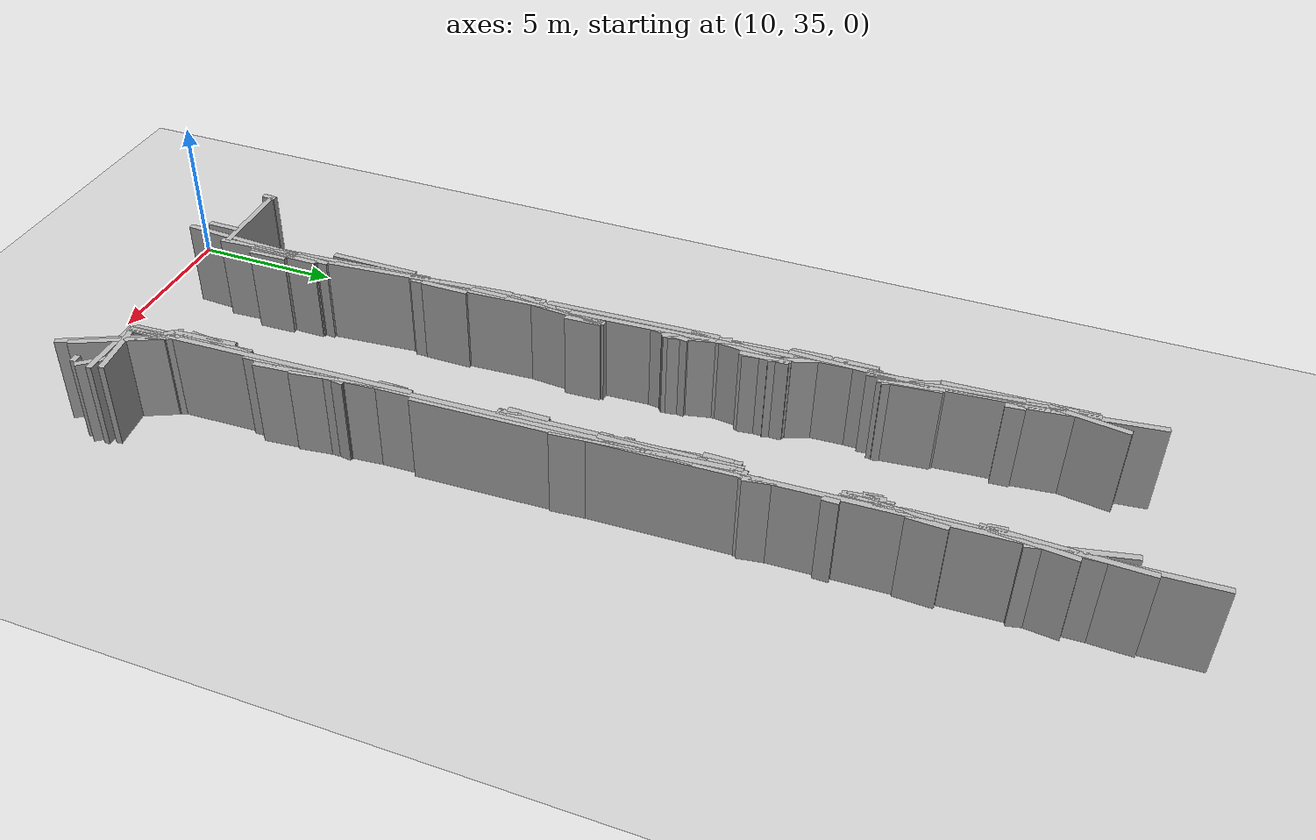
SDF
<sdf version="1.6">
 <world name="aboureyhan">
  <model name="ground_plane">
   <static>true</static>
   <link name="link">
    <collision name="collision">
     <geometry><plane><normal>0 0 1</normal><size>100 100</size></plane></geometry>
    </collision>
    <visual name="visual">
     <geometry><plane><normal>0 0 1</normal><size>500 500</size></plane></geometry>
     <material>
      <ambient>0.8 0.8 0.8 1</ambient>
      <diffuse>0.8 0.8 0.8 1</diffuse>
      <specular>0.8 0.8 0.8 1</specular>
     </material>
    </visual>
   </link>
  </model>
  <model name="wall_0">
   <static>true</static>
   <pose>17.950000000000003 52.25 1.5 0 0 -1.536027734938814</pose>
   <link name="link">
    <collision name="collision">
     <geometry><box><size>11.506954418958998 0.2 3.0</size></box></geometry>
    </collision>
    <visual name="visual">
     <geometry><box><size>11.506954418958998 0.2 3.0</size></box></geometry>
     <material><ambient>0.5 0.5 0.5 1</ambient><diffuse>0.7 0.7 0.7 1</diffuse></material>
    </visual>
   </link>
  </model>
  <model name="wall_1">
   <static>true</static>
   <pose>17.85 59.275 1.5 0 0 -1.5359520476033424</pose>
   <link name="link">
    <collision name="collision">
     <geometry><box><size>22.963939122023472 0.2 3.0</size></box></geometry>
    </collision>
    <visual name="visual">
     <geometry><box><size>22.963939122023472 0.2 3.0</size></box></geometry>
     <material><ambient>0.5 0.5 0.5 1</ambient><diffuse>0.7 0.7 0.7 1</diffuse></material>
    </visual>
   </link>
  </model>
  <model name="wall_9">
   <static>true</static>
   <pose>12.350000000000001 52.75 1.5 0 0 -1.518894928336724</pose>
   <link name="link">
    <collision name="collision">
     <geometry><box><size>15.420765220960993 0.2 3.0</size></box></geometry>
    </collision>
    <visual name="visual">
     <geometry><box><size>15.420765220960993 0.2 3.0</size></box></geometry>
     <material><ambient>0.5 0.5 0.5 1</ambient><diffuse>0.7 0.7 0.7 1</diffuse></material>
    </visual>
   </link>
  </model>
  <model name="wall_12">
   <static>true</static>
   <pose>11.675 64.45 1.5 0 0 -1.538199181676944</pose>
   <link name="link">
    <collision name="collision"><geometry><box><size>4.602445002387312 0.2 3.0</size></box></geometry></collision>
    <visual name="visual">
     <geometry><box><size>4.602445002387312 0.2 3.0</size></box></geometry>
     <material><ambient>0.5 0.5 0.5 1</ambient><diffuse>0.7 0.7 0.7 1</diffuse></material>
    </visual>
   </link>
  </model>
  <model name="wall_13">
   <static>true</static>
   <pose>13.225000000000001 39.95 1.5 0 0 -1.5323537367737112</pose>
   <link name="link">
    <collision name="collision"><geometry><box><size>1.30096118312578 0.2 3.0</size></box></geometry></collision>
    <visual name="visual">
     <geometry><box><size>1.30096118312578 0.2 3.0</size></box></geometry>
     <material><ambient>0.5 0.5 0.5 1</ambient><diffuse>0.7 0.7 0.7 1</diffuse></material>
    </visual>
   </link>
  </model>
  <model name="wall_19">
   <static>true</static>
   <pose>18.175 42.95 1.5 0 0 -1.5343541341854636</pose>
   <link name="link">
    <collision name="collision"><geometry><box><size>9.606378089581936 0.2 3.0</size></box></geometry></collision>
    <visual name="visual">
     <geometry><box><size>9.606378089581936 0.2 3.0</size></box></geometry>
     <material><ambient>0.5 0.5 0.5 1</ambient><diffuse>0.7 0.7 0.7 1</diffuse></material>
    </visual>
   </link>
  </model>
  <model name="wall_22">
   <static>true</static>
   <pose>17.725 54.150000000000006 1.5 0 0 -1.5370253871899826</pose>
   <link name="link">
    <collision name="collision"><geometry><box><size>7.404221768693864 0.2 3.0</size></box></geometry></collision>
    <visual name="visual">
     <geometry><box><size>7.404221768693864 0.2 3.0</size></box></geometry>
     <material><ambient>0.5 0.5 0.5 1</ambient><diffuse>0.7 0.7 0.7 1</diffuse></material>
    </visual>
   </link>
  </model>
  <model name="wall_26">
   <static>true</static>
   <pose>12.525 56.925000000000004 1.5 0 0 -1.5385494443596421</pose>
   <link name="link">
    <collision name="collision">
     <geometry><box><size>1.5508062419270794 0.2 3.0</size></box></geometry>
    </collision>
    <visual name="visual">
     <geometry><box><size>1.5508062419270794 0.2 3.0</size></box></geometry>
     <material><ambient>0.5 0.5 0.5 1</ambient><diffuse>0.7 0.7 0.7 1</diffuse></material>
    </visual>
   </link>
  </model>
  <model name="wall_30">
   <static>true</static>
   <pose>18.15 40.275 1.5 0 0 -1.5214536945419268</pose>
   <link name="link">
    <collision name="collision"><geometry><box><size>4.054935264588077 0.2 3.0</size></box></geometry></collision>
    <visual name="visual">
     <geometry><box><size>4.054935264588077 0.2 3.0</size></box></geometry>
     <material><ambient>0.5 0.5 0.5 1</ambient><diffuse>0.7 0.7 0.7 1</diffuse></material>
    </visual>
   </link>
  </model>
  <model name="wall_31">
   <static>true</static>
   <pose>12.325000000000001 54.15 1.5 0 0 -1.5222234514887643</pose>
   <link name="link">
    <collision name="collision"><geometry><box><size>7.208501924810732 0.2 3.0</size></box></geometry></collision>
    <visual name="visual">
     <geometry><box><size>7.208501924810732 0.2 3.0</size></box></geometry>
     <material><ambient>0.5 0.5 0.5 1</ambient><diffuse>0.7 0.7 0.7 1</diffuse></material>
    </visual>
   </link>
  </model>
  <model name="wall_37">
   <static>true</static>
   <pose>11.825000000000001 58.22500000000001 1.5 0 0 -1.530817639671606</pose>
   <link name="link">
    <collision name="collision">
     <geometry><box><size>1.2509996003196804 0.2 3.0</size></box></geometry>
    </collision>
    <visual name="visual">
     <geometry><box><size>1.2509996003196804 0.2 3.0</size></box></geometry>
     <material><ambient>0.5 0.5 0.5 1</ambient><diffuse>0.7 0.7 0.7 1</diffuse></material>
    </visual>
   </link>
  </model>
  <model name="wall_38">
   <static>true</static>
   <pose>17.450000000000003 57.050000000000004 1.5 0 0 -1.5707963267948966</pose>
   <link name="link">
    <collision name="collision">
     <geometry><box><size>0.8999999999999915 0.2 3.0</size></box></geometry>
    </collision>
    <visual name="visual">
     <geometry><box><size>0.8999999999999915 0.2 3.0</size></box></geometry>
     <material><ambient>0.5 0.5 0.5 1</ambient><diffuse>0.7 0.7 0.7 1</diffuse></material>
    </visual>
   </link>
  </model>
  <model name="wall_39">
   <static>true</static>
   <pose>12.775 51.1 1.5 0 0 -1.5291537476963077</pose>
   <link name="link">
    <collision name="collision">
     <geometry><box><size>1.2010412149464342 0.2 3.0</size></box></geometry>
    </collision>
    <visual name="visual">
     <geometry><box><size>1.2010412149464342 0.2 3.0</size></box></geometry>
     <material><ambient>0.5 0.5 0.5 1</ambient><diffuse>0.7 0.7 0.7 1</diffuse></material>
    </visual>
   </link>
  </model>
  <model name="wall_65">
   <static>true</static>
   <pose>12.175 52.525000000000006 1.5 0 0 -1.5265773823992437</pose>
   <link name="link">
    <collision name="collision"><geometry><box><size>5.655528268871093 0.2 3.0</size></box></geometry></collision>
    <visual name="visual">
     <geometry><box><size>5.655528268871093 0.2 3.0</size></box></geometry>
     <material><ambient>0.5 0.5 0.5 1</ambient><diffuse>0.7 0.7 0.7 1</diffuse></material>
    </visual>
   </link>
  </model>
  <model name="wall_96">
   <static>true</static>
   <pose>18.200000000000003 45.7 1.5 0 0 -1.4364748848419278</pose>
   <link name="link">
    <collision name="collision">
     <geometry><box><size>3.7336309405188826 0.2 3.0</size></box></geometry>
    </collision>
    <visual name="visual">
     <geometry><box><size>3.7336309405188826 0.2 3.0</size></box></geometry>
     <material><ambient>0.5 0.5 0.5 1</ambient><diffuse>0.7 0.7 0.7 1</diffuse></material>
    </visual>
   </link>
  </model>
  <model name="wall_97">
   <static>true</static>
   <pose>12.75 41.775 1.5 0 0 -1.5046677234303236</pose>
   <link name="link">
    <collision name="collision">
     <geometry><box><size>7.5665381780573835 0.2 3.0</size></box></geometry>
    </collision>
    <visual name="visual">
     <geometry><box><size>7.5665381780573835 0.2 3.0</size></box></geometry>
     <material><ambient>0.5 0.5 0.5 1</ambient><diffuse>0.7 0.7 0.7 1</diffuse></material>
    </visual>
   </link>
  </model>
  <model name="wall_151">
   <static>true</static>
   <pose>18.3 43.925000000000004 1.5 0 0 1.5707963267948966</pose>
   <link name="link">
    <collision name="collision"><geometry><box><size>3.450000000000003 0.2 3.0</size></box></geometry></collision>
    <visual name="visual">
     <geometry><box><size>3.450000000000003 0.2 3.0</size></box></geometry>
     <material><ambient>0.5 0.5 0.5 1</ambient><diffuse>0.7 0.7 0.7 1</diffuse></material>
    </visual>
   </link>
  </model>
  <model name="wall_154">
   <static>true</static>
   <pose>12.300000000000002 55.75 1.5 0 0 1.4559197213779969</pose>
   <link name="link">
    <collision name="collision">
     <geometry><box><size>2.6172504656604745 0.2 3.0</size></box></geometry>
    </collision>
    <visual name="visual">
     <geometry><box><size>2.6172504656604745 0.2 3.0</size></box></geometry>
     <material><ambient>0.5 0.5 0.5 1</ambient><diffuse>0.7 0.7 0.7 1</diffuse></material>
    </visual>
   </link>
  </model>
  <model name="wall_162">
   <static>true</static>
   <pose>12.800000000000002 39.3 1.5 0 0 1.5163048705541653</pose>
   <link name="link">
    <collision name="collision"><geometry><box><size>5.508175741568165 0.2 3.0</size></box></geometry></collision>
    <visual name="visual">
     <geometry><box><size>5.508175741568165 0.2 3.0</size></box></geometry>
     <material><ambient>0.5 0.5 0.5 1</ambient><diffuse>0.7 0.7 0.7 1</diffuse></material>
    </visual>
   </link>
  </model>
  <model name="wall_181">
   <static>true</static>
   <pose>12.450000000000001 53.800000000000004 1.5 0 0 1.4288992721907323</pose>
   <link name="link">
    <collision name="collision">
     <geometry><box><size>1.4142135623730865 0.2 3.0</size></box></geometry>
    </collision>
    <visual name="visual">
     <geometry><box><size>1.4142135623730865 0.2 3.0</size></box></geometry>
     <material><ambient>0.5 0.5 0.5 1</ambient><diffuse>0.7 0.7 0.7 1</diffuse></material>
    </visual>
   </link>
  </model>
  <model name="wall_192">
   <static>true</static>
   <pose>12.200000000000001 61.35000000000001 1.5 0 0 -1.471127674303735</pose>
   <link name="link">
    <collision name="collision"><geometry><box><size>2.009975124224178 0.2 3.0</size></box></geometry></collision>
    <visual name="visual">
     <geometry><box><size>2.009975124224178 0.2 3.0</size></box></geometry>
     <material><ambient>0.5 0.5 0.5 1</ambient><diffuse>0.7 0.7 0.7 1</diffuse></material>
    </visual>
   </link>
  </model>
  <model name="wall_199">
   <static>true</static>
   <pose>17.900000000000002 53.45 1.5 0 0 1.5707963267948966</pose>
   <link name="link">
    <collision name="collision"><geometry><box><size>6.0 0.2 3.0</size></box></geometry></collision>
    <visual name="visual">
     <geometry><box><size>6.0 0.2 3.0</size></box></geometry>
     <material><ambient>0.5 0.5 0.5 1</ambient><diffuse>0.7 0.7 0.7 1</diffuse></material>
    </visual>
   </link>
  </model>
  <model name="wall_224">
   <static>true</static>
   <pose>11.925000000000002 63.575 1.5 0 0 -1.4857307868262515</pose>
   <link name="link">
    <collision name="collision"><geometry><box><size>6.47340713998431 0.2 3.0</size></box></geometry></collision>
    <visual name="visual">
     <geometry><box><size>6.47340713998431 0.2 3.0</size></box></geometry>
     <material><ambient>0.5 0.5 0.5 1</ambient><diffuse>0.7 0.7 0.7 1</diffuse></material>
    </visual>
   </link>
  </model>
  <model name="wall_227">
   <static>true</static>
   <pose>11.875000000000002 66.5 1.5 0 0 1.4259838285559587</pose>
   <link name="link">
    <collision name="collision"><geometry><box><size>2.425386567126986 0.2 3.0</size></box></geometry></collision>
    <visual name="visual">
     <geometry><box><size>2.425386567126986 0.2 3.0</size></box></geometry>
     <material><ambient>0.5 0.5 0.5 1</ambient><diffuse>0.7 0.7 0.7 1</diffuse></material>
    </visual>
   </link>
  </model>
  <model name="wall_233">
   <static>true</static>
   <pose>18.400000000000002 38.825 1.5 0 0 1.5707963267948966</pose>
   <link name="link">
    <collision name="collision">
     <geometry><box><size>1.3499999999999943 0.2 3.0</size></box></geometry>
    </collision>
    <visual name="visual">
     <geometry><box><size>1.3499999999999943 0.2 3.0</size></box></geometry>
     <material><ambient>0.5 0.5 0.5 1</ambient><diffuse>0.7 0.7 0.7 1</diffuse></material>
    </visual>
   </link>
  </model>
  <model name="wall_253">
   <static>true</static>
   <pose>17.650000000000002 54.45 1.5 0 0 1.5707963267948966</pose>
   <link name="link">
    <collision name="collision">
     <geometry><box><size>0.30000000000001137 0.2 3.0</size></box></geometry>
    </collision>
    <visual name="visual">
     <geometry><box><size>0.30000000000001137 0.2 3.0</size></box></geometry>
     <material><ambient>0.5 0.5 0.5 1</ambient><diffuse>0.7 0.7 0.7 1</diffuse></material>
    </visual>
   </link>
  </model>
  <model name="wall_265">
   <static>true</static>
   <pose>19.425 38.150000000000006 1.5 0 0 0.0</pose>
   <link name="link">
    <collision name="collision"><geometry><box><size>2.25 0.2 3.0</size></box></geometry></collision>
    <visual name="visual">
     <geometry><box><size>2.25 0.2 3.0</size></box></geometry>
     <material><ambient>0.5 0.5 0.5 1</ambient><diffuse>0.7 0.7 0.7 1</diffuse></material>
    </visual>
   </link>
  </model>
  <model name="wall_269">
   <static>true</static>
   <pose>17.950000000000003 60.400000000000006 1.5 0 0 1.5707963267948966</pose>
   <link name="link">
    <collision name="collision"><geometry><box><size>0.5 0.2 3.0</size></box></geometry></collision>
    <visual name="visual">
     <geometry><box><size>0.5 0.2 3.0</size></box></geometry>
     <material><ambient>0.5 0.5 0.5 1</ambient><diffuse>0.7 0.7 0.7 1</diffuse></material>
    </visual>
   </link>
  </model>
  <model name="wall_272">
   <static>true</static>
   <pose>12.500000000000002 50.275 1.5 0 0 1.4403930189057623</pose>
   <link name="link">
    <collision name="collision">
     <geometry><box><size>3.0761176830544024 0.2 3.0</size></box></geometry>
    </collision>
    <visual name="visual">
     <geometry><box><size>3.0761176830544024 0.2 3.0</size></box></geometry>
     <material><ambient>0.5 0.5 0.5 1</ambient><diffuse>0.7 0.7 0.7 1</diffuse></material>
    </visual>
   </link>
  </model>
  <model name="wall_282">
   <static>true</static>
   <pose>12.700000000000001 43.85 1.5 0 0 -1.4840579881189115</pose>
   <link name="link">
    <collision name="collision"><geometry><box><size>9.23471710449216 0.2 3.0</size></box></geometry></collision>
    <visual name="visual">
     <geometry><box><size>9.23471710449216 0.2 3.0</size></box></geometry>
     <material><ambient>0.5 0.5 0.5 1</ambient><diffuse>0.7 0.7 0.7 1</diffuse></material>
    </visual>
   </link>
  </model>
  <model name="wall_303">
   <static>true</static>
   <pose>17.650000000000002 61.3 1.5 0 0 -1.504228163019072</pose>
   <link name="link">
    <collision name="collision"><geometry><box><size>1.503329637837291 0.2 3.0</size></box></geometry></collision>
    <visual name="visual">
     <geometry><box><size>1.503329637837291 0.2 3.0</size></box></geometry>
     <material><ambient>0.5 0.5 0.5 1</ambient><diffuse>0.7 0.7 0.7 1</diffuse></material>
    </visual>
   </link>
  </model>
  <model name="wall_310">
   <static>true</static>
   <pose>17.475 61.2 1.5 0 0 -1.446441332248135</pose>
   <link name="link">
    <collision name="collision"><geometry><box><size>1.209338662244771 0.2 3.0</size></box></geometry></collision>
    <visual name="visual">
     <geometry><box><size>1.209338662244771 0.2 3.0</size></box></geometry>
     <material><ambient>0.5 0.5 0.5 1</ambient><diffuse>0.7 0.7 0.7 1</diffuse></material>
    </visual>
   </link>
  </model>
  <model name="wall_322">
   <static>true</static>
   <pose>12.075000000000001 64.4 1.5 0 0 -1.4876550949064535</pose>
   <link name="link">
    <collision name="collision">
     <geometry><box><size>0.6020797289396091 0.2 3.0</size></box></geometry>
    </collision>
    <visual name="visual">
     <geometry><box><size>0.6020797289396091 0.2 3.0</size></box></geometry>
     <material><ambient>0.5 0.5 0.5 1</ambient><diffuse>0.7 0.7 0.7 1</diffuse></material>
    </visual>
   </link>
  </model>
  <model name="wall_344">
   <static>true</static>
   <pose>17.525000000000002 66.625 1.5 0 0 1.538549444359643</pose>
   <link name="link">
    <collision name="collision"><geometry><box><size>4.652418725781253 0.2 3.0</size></box></geometry></collision>
    <visual name="visual">
     <geometry><box><size>4.652418725781253 0.2 3.0</size></box></geometry>
     <material><ambient>0.5 0.5 0.5 1</ambient><diffuse>0.7 0.7 0.7 1</diffuse></material>
    </visual>
   </link>
  </model>
  <model name="wall_356">
   <static>true</static>
   <pose>17.975 40.575 1.5 0 0 -1.5011417530663294</pose>
   <link name="link">
    <collision name="collision">
     <geometry><box><size>2.1552262062252363 0.2 3.0</size></box></geometry>
    </collision>
    <visual name="visual">
     <geometry><box><size>2.1552262062252363 0.2 3.0</size></box></geometry>
     <material><ambient>0.5 0.5 0.5 1</ambient><diffuse>0.7 0.7 0.7 1</diffuse></material>
    </visual>
   </link>
  </model>
  <model name="wall_361">
   <static>true</static>
   <pose>11.500000000000002 38.175000000000004 1.5 0 0 0.017239671194528704</pose>
   <link name="link">
    <collision name="collision"><geometry><box><size>2.900431002454637 0.2 3.0</size></box></geometry></collision>
    <visual name="visual">
     <geometry><box><size>2.900431002454637 0.2 3.0</size></box></geometry>
     <material><ambient>0.5 0.5 0.5 1</ambient><diffuse>0.7 0.7 0.7 1</diffuse></material>
    </visual>
   </link>
  </model>
  <model name="wall_369">
   <static>true</static>
   <pose>12.475000000000001 47.075 1.5 0 0 -1.4886288044331963</pose>
   <link name="link">
    <collision name="collision"><geometry><box><size>4.26438741204408 0.2 3.0</size></box></geometry></collision>
    <visual name="visual">
     <geometry><box><size>4.26438741204408 0.2 3.0</size></box></geometry>
     <material><ambient>0.5 0.5 0.5 1</ambient><diffuse>0.7 0.7 0.7 1</diffuse></material>
    </visual>
   </link>
  </model>
  <model name="wall_370">
   <static>true</static>
   <pose>11.900000000000002 62.9 1.5 0 0 -1.484802035600656</pose>
   <link name="link">
    <collision name="collision"><geometry><box><size>5.821511831131151 0.2 3.0</size></box></geometry></collision>
    <visual name="visual">
     <geometry><box><size>5.821511831131151 0.2 3.0</size></box></geometry>
     <material><ambient>0.5 0.5 0.5 1</ambient><diffuse>0.7 0.7 0.7 1</diffuse></material>
    </visual>
   </link>
  </model>
  <model name="wall_382">
   <static>true</static>
   <pose>17.425 66.975 1.5 0 0 -1.353922711128489</pose>
   <link name="link">
    <collision name="collision">
     <geometry><box><size>3.0207614933986453 0.2 3.0</size></box></geometry>
    </collision>
    <visual name="visual">
     <geometry><box><size>3.0207614933986453 0.2 3.0</size></box></geometry>
     <material><ambient>0.5 0.5 0.5 1</ambient><diffuse>0.7 0.7 0.7 1</diffuse></material>
    </visual>
   </link>
  </model>
  <model name="wall_393">
   <static>true</static>
   <pose>12.15 57.75000000000001 1.5 0 0 -1.355438627097159</pose>
   <link name="link">
    <collision name="collision">
     <geometry><box><size>3.2756678708318425 0.2 3.0</size></box></geometry>
    </collision>
    <visual name="visual">
     <geometry><box><size>3.2756678708318425 0.2 3.0</size></box></geometry>
     <material><ambient>0.5 0.5 0.5 1</ambient><diffuse>0.7 0.7 0.7 1</diffuse></material>
    </visual>
   </link>
  </model>
  <model name="wall_395">
   <static>true</static>
   <pose>12.100000000000001 61.325 1.5 0 0 -1.2220253232109899</pose>
   <link name="link">
    <collision name="collision">
     <geometry><box><size>1.7557049866079495 0.2 3.0</size></box></geometry>
    </collision>
    <visual name="visual">
     <geometry><box><size>1.7557049866079495 0.2 3.0</size></box></geometry>
     <material><ambient>0.5 0.5 0.5 1</ambient><diffuse>0.7 0.7 0.7 1</diffuse></material>
    </visual>
   </link>
  </model>
  <model name="wall_396">
   <static>true</static>
   <pose>12.25 37.6 1.5 0 0 -1.5707963267948966</pose>
   <link name="link">
    <collision name="collision">
     <geometry><box><size>1.1000000000000085 0.2 3.0</size></box></geometry>
    </collision>
    <visual name="visual">
     <geometry><box><size>1.1000000000000085 0.2 3.0</size></box></geometry>
     <material><ambient>0.5 0.5 0.5 1</ambient><diffuse>0.7 0.7 0.7 1</diffuse></material>
    </visual>
   </link>
  </model>
  <model name="wall_402">
   <static>true</static>
   <pose>18.3 44.900000000000006 1.5 0 0 -1.4821404449274596</pose>
   <link name="link">
    <collision name="collision"><geometry><box><size>4.517742799230607 0.2 3.0</size></box></geometry></collision>
    <visual name="visual">
     <geometry><box><size>4.517742799230607 0.2 3.0</size></box></geometry>
     <material><ambient>0.5 0.5 0.5 1</ambient><diffuse>0.7 0.7 0.7 1</diffuse></material>
    </visual>
   </link>
  </model>
  <model name="wall_418">
   <static>true</static>
   <pose>11.775 66.4 1.5 0 0 -1.4517960334121165</pose>
   <link name="link">
    <collision name="collision"><geometry><box><size>4.632763753959395 0.2 3.0</size></box></geometry></collision>
    <visual name="visual">
     <geometry><box><size>4.632763753959395 0.2 3.0</size></box></geometry>
     <material><ambient>0.5 0.5 0.5 1</ambient><diffuse>0.7 0.7 0.7 1</diffuse></material>
    </visual>
   </link>
  </model>
  <model name="wall_463">
   <static>true</static>
   <pose>17.675000000000004 57.075 1.5 0 0 -1.5385494443596426</pose>
   <link name="link">
    <collision name="collision">
     <geometry><box><size>1.5508062419270936 0.2 3.0</size></box></geometry>
    </collision>
    <visual name="visual">
     <geometry><box><size>1.5508062419270936 0.2 3.0</size></box></geometry>
     <material><ambient>0.5 0.5 0.5 1</ambient><diffuse>0.7 0.7 0.7 1</diffuse></material>
    </visual>
   </link>
  </model>
  <model name="wall_468">
   <static>true</static>
   <pose>17.625 62.325 1.5 0 0 -1.4601391056209967</pose>
   <link name="link">
    <collision name="collision">
     <geometry><box><size>0.4527692569068596 0.2 3.0</size></box></geometry>
    </collision>
    <visual name="visual">
     <geometry><box><size>0.4527692569068596 0.2 3.0</size></box></geometry>
     <material><ambient>0.5 0.5 0.5 1</ambient><diffuse>0.7 0.7 0.7 1</diffuse></material>
    </visual>
   </link>
  </model>
  <model name="wall_482">
   <static>true</static>
   <pose>12.75 46.25 1.5 0 0 1.5707963267948966</pose>
   <link name="link">
    <collision name="collision">
     <geometry><box><size>1.5999999999999943 0.2 3.0</size></box></geometry>
    </collision>
    <visual name="visual">
     <geometry><box><size>1.5999999999999943 0.2 3.0</size></box></geometry>
     <material><ambient>0.5 0.5 0.5 1</ambient><diffuse>0.7 0.7 0.7 1</diffuse></material>
    </visual>
   </link>
  </model>
  <model name="wall_491">
   <static>true</static>
   <pose>17.55 65.125 1.5 0 0 -1.5509969342285035</pose>
   <link name="link">
    <collision name="collision"><geometry><box><size>5.050990001969908 0.2 3.0</size></box></geometry></collision>
    <visual name="visual">
     <geometry><box><size>5.050990001969908 0.2 3.0</size></box></geometry>
     <material><ambient>0.5 0.5 0.5 1</ambient><diffuse>0.7 0.7 0.7 1</diffuse></material>
    </visual>
   </link>
  </model>
  <model name="wall_494">
   <static>true</static>
   <pose>19.450000000000003 38.375 1.5 0 0 0.1308273960740568</pose>
   <link name="link">
    <collision name="collision"><geometry><box><size>1.916376789673682 0.2 3.0</size></box></geometry></collision>
    <visual name="visual">
     <geometry><box><size>1.916376789673682 0.2 3.0</size></box></geometry>
     <material><ambient>0.5 0.5 0.5 1</ambient><diffuse>0.7 0.7 0.7 1</diffuse></material>
    </visual>
   </link>
  </model>
  <model name="wall_495">
   <static>true</static>
   <pose>18.025000000000002 41.175 1.5 0 0 1.460139105621001</pose>
   <link name="link">
    <collision name="collision">
     <geometry><box><size>2.2638462845343543 0.2 3.0</size></box></geometry>
    </collision>
    <visual name="visual">
     <geometry><box><size>2.2638462845343543 0.2 3.0</size></box></geometry>
     <material><ambient>0.5 0.5 0.5 1</ambient><diffuse>0.7 0.7 0.7 1</diffuse></material>
    </visual>
   </link>
  </model>
  <model name="wall_500">
   <static>true</static>
   <pose>20.300000000000004 37.5 1.5 0 0 0.0</pose>
   <link name="link">
    <collision name="collision">
     <geometry><box><size>0.3000000000000007 0.2 3.0</size></box></geometry>
    </collision>
    <visual name="visual">
     <geometry><box><size>0.3000000000000007 0.2 3.0</size></box></geometry>
     <material><ambient>0.5 0.5 0.5 1</ambient><diffuse>0.7 0.7 0.7 1</diffuse></material>
    </visual>
   </link>
  </model>
  <model name="wall_513">
   <static>true</static>
   <pose>12.200000000000001 58.1 1.5 0 0 -1.2068173702852536</pose>
   <link name="link">
    <collision name="collision">
     <geometry><box><size>2.2472205054244316 0.2 3.0</size></box></geometry>
    </collision>
    <visual name="visual">
     <geometry><box><size>2.2472205054244316 0.2 3.0</size></box></geometry>
     <material><ambient>0.5 0.5 0.5 1</ambient><diffuse>0.7 0.7 0.7 1</diffuse></material>
    </visual>
   </link>
  </model>
  <model name="wall_544">
   <static>true</static>
   <pose>12.5 47.72500000000001 1.5 0 0 1.5707963267948966</pose>
   <link name="link">
    <collision name="collision"><geometry><box><size>1.25 0.2 3.0</size></box></geometry></collision>
    <visual name="visual">
     <geometry><box><size>1.25 0.2 3.0</size></box></geometry>
     <material><ambient>0.5 0.5 0.5 1</ambient><diffuse>0.7 0.7 0.7 1</diffuse></material>
    </visual>
   </link>
  </model>
  <model name="wall_551">
   <static>true</static>
   <pose>17.700000000000003 53.800000000000004 1.5 0 0 1.5707963267948966</pose>
   <link name="link">
    <collision name="collision">
     <geometry><box><size>0.3999999999999915 0.2 3.0</size></box></geometry>
    </collision>
    <visual name="visual">
     <geometry><box><size>0.3999999999999915 0.2 3.0</size></box></geometry>
     <material><ambient>0.5 0.5 0.5 1</ambient><diffuse>0.7 0.7 0.7 1</diffuse></material>
    </visual>
   </link>
  </model>
  <model name="wall_585">
   <static>true</static>
   <pose>12.400000000000002 43.5 1.5 0 0 1.5707963267948966</pose>
   <link name="link">
    <collision name="collision"><geometry><box><size>3.0 0.2 3.0</size></box></geometry></collision>
    <visual name="visual">
     <geometry><box><size>3.0 0.2 3.0</size></box></geometry>
     <material><ambient>0.5 0.5 0.5 1</ambient><diffuse>0.7 0.7 0.7 1</diffuse></material>
    </visual>
   </link>
  </model>
  <model name="wall_590">
   <static>true</static>
   <pose>12.350000000000001 54.95 1.5 0 0 -1.3473197256542624</pose>
   <link name="link">
    <collision name="collision">
     <geometry><box><size>2.2561028345356844 0.2 3.0</size></box></geometry>
    </collision>
    <visual name="visual">
     <geometry><box><size>2.2561028345356844 0.2 3.0</size></box></geometry>
     <material><ambient>0.5 0.5 0.5 1</ambient><diffuse>0.7 0.7 0.7 1</diffuse></material>
    </visual>
   </link>
  </model>
  <model name="wall_618">
   <static>true</static>
   <pose>12.500000000000002 57.0 1.5 0 0 -1.438244794498223</pose>
   <link name="link">
    <collision name="collision">
     <geometry><box><size>1.5132745950421556 0.2 3.0</size></box></geometry>
    </collision>
    <visual name="visual">
     <geometry><box><size>1.5132745950421556 0.2 3.0</size></box></geometry>
     <material><ambient>0.5 0.5 0.5 1</ambient><diffuse>0.7 0.7 0.7 1</diffuse></material>
    </visual>
   </link>
  </model>
  <model name="wall_628">
   <static>true</static>
   <pose>17.650000000000002 51.35 1.5 0 0 1.5707963267948966</pose>
   <link name="link">
    <collision name="collision">
     <geometry><box><size>1.2999999999999972 0.2 3.0</size></box></geometry>
    </collision>
    <visual name="visual">
     <geometry><box><size>1.2999999999999972 0.2 3.0</size></box></geometry>
     <material><ambient>0.5 0.5 0.5 1</ambient><diffuse>0.7 0.7 0.7 1</diffuse></material>
    </visual>
   </link>
  </model>
  <model name="wall_638">
   <static>true</static>
   <pose>17.625 65.775 1.5 0 0 1.4691074750318196</pose>
   <link name="link">
    <collision name="collision"><geometry><box><size>2.462722071204953 0.2 3.0</size></box></geometry></collision>
    <visual name="visual">
     <geometry><box><size>2.462722071204953 0.2 3.0</size></box></geometry>
     <material><ambient>0.5 0.5 0.5 1</ambient><diffuse>0.7 0.7 0.7 1</diffuse></material>
    </visual>
   </link>
  </model>
  <model name="wall_648">
   <static>true</static>
   <pose>12.05 57.175000000000004 1.5 0 0 -1.524318195443893</pose>
   <link name="link">
    <collision name="collision"><geometry><box><size>2.15232432500308 0.2 3.0</size></box></geometry></collision>
    <visual name="visual">
     <geometry><box><size>2.15232432500308 0.2 3.0</size></box></geometry>
     <material><ambient>0.5 0.5 0.5 1</ambient><diffuse>0.7 0.7 0.7 1</diffuse></material>
    </visual>
   </link>
  </model>
  <model name="wall_650">
   <static>true</static>
   <pose>17.925000000000004 54.925000000000004 1.5 0 0 -1.4884143962032061</pose>
   <link name="link">
    <collision name="collision"><geometry><box><size>5.468546424782369 0.2 3.0</size></box></geometry></collision>
    <visual name="visual">
     <geometry><box><size>5.468546424782369 0.2 3.0</size></box></geometry>
     <material><ambient>0.5 0.5 0.5 1</ambient><diffuse>0.7 0.7 0.7 1</diffuse></material>
    </visual>
   </link>
  </model>
  <model name="wall_653">
   <static>true</static>
   <pose>11.900000000000002 62.325 1.5 0 0 -1.4849860620983948</pose>
   <link name="link">
    <collision name="collision"><geometry><box><size>4.667172591623332 0.2 3.0</size></box></geometry></collision>
    <visual name="visual">
     <geometry><box><size>4.667172591623332 0.2 3.0</size></box></geometry>
     <material><ambient>0.5 0.5 0.5 1</ambient><diffuse>0.7 0.7 0.7 1</diffuse></material>
    </visual>
   </link>
  </model>
  <model name="wall_678">
   <static>true</static>
   <pose>17.650000000000002 61.87500000000001 1.5 0 0 1.5316007248678414</pose>
   <link name="link">
    <collision name="collision">
     <geometry><box><size>2.5519600310349664 0.2 3.0</size></box></geometry>
    </collision>
    <visual name="visual">
     <geometry><box><size>2.5519600310349664 0.2 3.0</size></box></geometry>
     <material><ambient>0.5 0.5 0.5 1</ambient><diffuse>0.7 0.7 0.7 1</diffuse></material>
    </visual>
   </link>
  </model>
  <model name="wall_684">
   <static>true</static>
   <pose>17.8 54.65 1.5 0 0 1.5707963267948966</pose>
   <link name="link">
    <collision name="collision"><geometry><box><size>2.200000000000003 0.2 3.0</size></box></geometry></collision>
    <visual name="visual">
     <geometry><box><size>2.200000000000003 0.2 3.0</size></box></geometry>
     <material><ambient>0.5 0.5 0.5 1</ambient><diffuse>0.7 0.7 0.7 1</diffuse></material>
    </visual>
   </link>
  </model>
  <model name="wall_685">
   <static>true</static>
   <pose>12.250000000000002 61.325 1.5 0 0 -1.4685896086876429</pose>
   <link name="link">
    <collision name="collision">
     <geometry><box><size>1.9602295783912544 0.2 3.0</size></box></geometry>
    </collision>
    <visual name="visual">
     <geometry><box><size>1.9602295783912544 0.2 3.0</size></box></geometry>
     <material><ambient>0.5 0.5 0.5 1</ambient><diffuse>0.7 0.7 0.7 1</diffuse></material>
    </visual>
   </link>
  </model>
  <model name="wall_695">
   <static>true</static>
   <pose>17.925 58.37500000000001 1.5 0 0 -1.4141944498128831</pose>
   <link name="link">
    <collision name="collision">
     <geometry><box><size>0.9617692030835698 0.2 3.0</size></box></geometry>
    </collision>
    <visual name="visual">
     <geometry><box><size>0.9617692030835698 0.2 3.0</size></box></geometry>
     <material><ambient>0.5 0.5 0.5 1</ambient><diffuse>0.7 0.7 0.7 1</diffuse></material>
    </visual>
   </link>
  </model>
  <model name="wall_700">
   <static>true</static>
   <pose>17.950000000000003 47.00000000000001 1.5 0 0 1.5707963267948966</pose>
   <link name="link">
    <collision name="collision">
     <geometry><box><size>0.7999999999999972 0.2 3.0</size></box></geometry>
    </collision>
    <visual name="visual">
     <geometry><box><size>0.7999999999999972 0.2 3.0</size></box></geometry>
     <material><ambient>0.5 0.5 0.5 1</ambient><diffuse>0.7 0.7 0.7 1</diffuse></material>
    </visual>
   </link>
  </model>
  <model name="wall_713">
   <static>true</static>
   <pose>18.075000000000003 39.5 1.5 0 0 -0.9600703624056909</pose>
   <link name="link">
    <collision name="collision">
     <geometry><box><size>0.6103277807866839 0.2 3.0</size></box></geometry>
    </collision>
    <visual name="visual">
     <geometry><box><size>0.6103277807866839 0.2 3.0</size></box></geometry>
     <material><ambient>0.5 0.5 0.5 1</ambient><diffuse>0.7 0.7 0.7 1</diffuse></material>
    </visual>
   </link>
  </model>
  <model name="wall_725">
   <static>true</static>
   <pose>17.375 61.425000000000004 1.5 0 0 -1.4801364395941499</pose>
   <link name="link">
    <collision name="collision">
     <geometry><box><size>0.5522680508593603 0.2 3.0</size></box></geometry>
    </collision>
    <visual name="visual">
     <geometry><box><size>0.5522680508593603 0.2 3.0</size></box></geometry>
     <material><ambient>0.5 0.5 0.5 1</ambient><diffuse>0.7 0.7 0.7 1</diffuse></material>
    </visual>
   </link>
  </model>
  <model name="wall_755">
   <static>true</static>
   <pose>17.375 64.775 1.5 0 0 -1.4801364395941499</pose>
   <link name="link">
    <collision name="collision">
     <geometry><box><size>0.5522680508593603 0.2 3.0</size></box></geometry>
    </collision>
    <visual name="visual">
     <geometry><box><size>0.5522680508593603 0.2 3.0</size></box></geometry>
     <material><ambient>0.5 0.5 0.5 1</ambient><diffuse>0.7 0.7 0.7 1</diffuse></material>
    </visual>
   </link>
  </model>
  <model name="wall_781">
   <static>true</static>
   <pose>17.525 61.75 1.5 0 0 -1.4876550949064535</pose>
   <link name="link">
    <collision name="collision">
     <geometry><box><size>0.6020797289396091 0.2 3.0</size></box></geometry>
    </collision>
    <visual name="visual">
     <geometry><box><size>0.6020797289396091 0.2 3.0</size></box></geometry>
     <material><ambient>0.5 0.5 0.5 1</ambient><diffuse>0.7 0.7 0.7 1</diffuse></material>
    </visual>
   </link>
  </model>
  <model name="wall_798">
   <static>true</static>
   <pose>12.000000000000002 59.725 1.5 0 0 1.547811869353445</pose>
   <link name="link">
    <collision name="collision"><geometry><box><size>4.351149273467882 0.2 3.0</size></box></geometry></collision>
    <visual name="visual">
     <geometry><box><size>4.351149273467882 0.2 3.0</size></box></geometry>
     <material><ambient>0.5 0.5 0.5 1</ambient><diffuse>0.7 0.7 0.7 1</diffuse></material>
    </visual>
   </link>
  </model>
  <model name="wall_811">
   <static>true</static>
   <pose>17.825000000000003 63.00000000000001 1.5 0 0 1.5291537476963077</pose>
   <link name="link">
    <collision name="collision">
     <geometry><box><size>1.2010412149464342 0.2 3.0</size></box></geometry>
    </collision>
    <visual name="visual">
     <geometry><box><size>1.2010412149464342 0.2 3.0</size></box></geometry>
     <material><ambient>0.5 0.5 0.5 1</ambient><diffuse>0.7 0.7 0.7 1</diffuse></material>
    </visual>
   </link>
  </model>
  <model name="wall_822">
   <static>true</static>
   <pose>12.550000000000002 49.475 1.5 0 0 1.4986326978352387</pose>
   <link name="link">
    <collision name="collision"><geometry><box><size>4.160829244273301 0.2 3.0</size></box></geometry></collision>
    <visual name="visual">
     <geometry><box><size>4.160829244273301 0.2 3.0</size></box></geometry>
     <material><ambient>0.5 0.5 0.5 1</ambient><diffuse>0.7 0.7 0.7 1</diffuse></material>
    </visual>
   </link>
  </model>
  <model name="wall_828">
   <static>true</static>
   <pose>10.025 38.05 1.5 0 0 1.4711276743037331</pose>
   <link name="link">
    <collision name="collision">
     <geometry><box><size>0.5024937810560446 0.2 3.0</size></box></geometry>
    </collision>
    <visual name="visual">
     <geometry><box><size>0.5024937810560446 0.2 3.0</size></box></geometry>
     <material><ambient>0.5 0.5 0.5 1</ambient><diffuse>0.7 0.7 0.7 1</diffuse></material>
    </visual>
   </link>
  </model>
  <model name="wall_849">
   <static>true</static>
   <pose>18.25 44.85 1.5 0 0 1.4464413322481362</pose>
   <link name="link">
    <collision name="collision">
     <geometry><box><size>1.6124515496597183 0.2 3.0</size></box></geometry>
    </collision>
    <visual name="visual">
     <geometry><box><size>1.6124515496597183 0.2 3.0</size></box></geometry>
     <material><ambient>0.5 0.5 0.5 1</ambient><diffuse>0.7 0.7 0.7 1</diffuse></material>
    </visual>
   </link>
  </model>
  <model name="wall_854">
   <static>true</static>
   <pose>12.325000000000001 54.725 1.5 0 0 -1.308676485529423</pose>
   <link name="link">
    <collision name="collision"><geometry><box><size>2.12249852767911 0.2 3.0</size></box></geometry></collision>
    <visual name="visual">
     <geometry><box><size>2.12249852767911 0.2 3.0</size></box></geometry>
     <material><ambient>0.5 0.5 0.5 1</ambient><diffuse>0.7 0.7 0.7 1</diffuse></material>
    </visual>
   </link>
  </model>
  <model name="wall_867">
   <static>true</static>
   <pose>17.650000000000002 55.775 1.5 0 0 -1.4698745421276032</pose>
   <link name="link">
    <collision name="collision"><geometry><box><size>3.970201506221066 0.2 3.0</size></box></geometry></collision>
    <visual name="visual">
     <geometry><box><size>3.970201506221066 0.2 3.0</size></box></geometry>
     <material><ambient>0.5 0.5 0.5 1</ambient><diffuse>0.7 0.7 0.7 1</diffuse></material>
    </visual>
   </link>
  </model>
  <model name="wall_868">
   <static>true</static>
   <pose>17.8 50.800000000000004 1.5 0 0 1.5707963267948966</pose>
   <link name="link">
    <collision name="collision">
     <geometry><box><size>0.7000000000000028 0.2 3.0</size></box></geometry>
    </collision>
    <visual name="visual">
     <geometry><box><size>0.7000000000000028 0.2 3.0</size></box></geometry>
     <material><ambient>0.5 0.5 0.5 1</ambient><diffuse>0.7 0.7 0.7 1</diffuse></material>
    </visual>
   </link>
  </model>
  <model name="wall_877">
   <static>true</static>
   <pose>11.650000000000002 66.0 1.5 0 0 1.5707963267948966</pose>
   <link name="link">
    <collision name="collision">
     <geometry><box><size>0.29999999999999716 0.2 3.0</size></box></geometry>
    </collision>
    <visual name="visual">
     <geometry><box><size>0.29999999999999716 0.2 3.0</size></box></geometry>
     <material><ambient>0.5 0.5 0.5 1</ambient><diffuse>0.7 0.7 0.7 1</diffuse></material>
    </visual>
   </link>
  </model>
  <model name="wall_880">
   <static>true</static>
   <pose>17.900000000000002 58.125 1.5 0 0 -1.4181469983996307</pose>
   <link name="link">
    <collision name="collision">
     <geometry><box><size>0.6576473218983011 0.2 3.0</size></box></geometry>
    </collision>
    <visual name="visual">
     <geometry><box><size>0.6576473218983011 0.2 3.0</size></box></geometry>
     <material><ambient>0.5 0.5 0.5 1</ambient><diffuse>0.7 0.7 0.7 1</diffuse></material>
    </visual>
   </link>
  </model>
  <model name="wall_897">
   <static>true</static>
   <pose>18.450000000000003 38.650000000000006 1.5 0 0 1.5707963267948966</pose>
   <link name="link">
    <collision name="collision">
     <geometry><box><size>1.0999999999999943 0.2 3.0</size></box></geometry>
    </collision>
    <visual name="visual">
     <geometry><box><size>1.0999999999999943 0.2 3.0</size></box></geometry>
     <material><ambient>0.5 0.5 0.5 1</ambient><diffuse>0.7 0.7 0.7 1</diffuse></material>
    </visual>
   </link>
  </model>
  <model name="wall_899">
   <static>true</static>
   <pose>11.8 59.6 1.5 0 0 1.5707963267948966</pose>
   <link name="link">
    <collision name="collision">
     <geometry><box><size>1.3999999999999915 0.2 3.0</size></box></geometry>
    </collision>
    <visual name="visual">
     <geometry><box><size>1.3999999999999915 0.2 3.0</size></box></geometry>
     <material><ambient>0.5 0.5 0.5 1</ambient><diffuse>0.7 0.7 0.7 1</diffuse></material>
    </visual>
   </link>
  </model>
  <model name="wall_916">
   <static>true</static>
   <pose>12.3 49.425000000000004 1.5 0 0 -1.5707963267948966</pose>
   <link name="link">
    <collision name="collision">
     <geometry><box><size>0.3500000000000085 0.2 3.0</size></box></geometry>
    </collision>
    <visual name="visual">
     <geometry><box><size>0.3500000000000085 0.2 3.0</size></box></geometry>
     <material><ambient>0.5 0.5 0.5 1</ambient><diffuse>0.7 0.7 0.7 1</diffuse></material>
    </visual>
   </link>
  </model>
  <model name="wall_930">
   <static>true</static>
   <pose>18.925000000000004 38.35 1.5 0 0 -1.1197266708063733</pose>
   <link name="link">
    <collision name="collision"><geometry><box><size>3.555629339512208 0.2 3.0</size></box></geometry></collision>
    <visual name="visual">
     <geometry><box><size>3.555629339512208 0.2 3.0</size></box></geometry>
     <material><ambient>0.5 0.5 0.5 1</ambient><diffuse>0.7 0.7 0.7 1</diffuse></material>
    </visual>
   </link>
  </model>
  <model name="wall_939">
   <static>true</static>
   <pose>11.875000000000002 64.875 1.5 0 0 -1.4513674007765565</pose>
   <link name="link">
    <collision name="collision">
     <geometry><box><size>1.2589678312014174 0.2 3.0</size></box></geometry>
    </collision>
    <visual name="visual">
     <geometry><box><size>1.2589678312014174 0.2 3.0</size></box></geometry>
     <material><ambient>0.5 0.5 0.5 1</ambient><diffuse>0.7 0.7 0.7 1</diffuse></material>
    </visual>
   </link>
  </model>
  <model name="wall_953">
   <static>true</static>
   <pose>13.05 40.45 1.5 0 0 1.5707963267948966</pose>
   <link name="link">
    <collision name="collision">
     <geometry><box><size>2.4000000000000057 0.2 3.0</size></box></geometry>
    </collision>
    <visual name="visual">
     <geometry><box><size>2.4000000000000057 0.2 3.0</size></box></geometry>
     <material><ambient>0.5 0.5 0.5 1</ambient><diffuse>0.7 0.7 0.7 1</diffuse></material>
    </visual>
   </link>
  </model>
  <model name="wall_970">
   <static>true</static>
   <pose>18.975 38.074999999999996 1.5 0 0 -1.1246907778514936</pose>
   <link name="link">
    <collision name="collision">
     <geometry><box><size>3.8242646351945906 0.2 3.0</size></box></geometry>
    </collision>
    <visual name="visual">
     <geometry><box><size>3.8242646351945906 0.2 3.0</size></box></geometry>
     <material><ambient>0.5 0.5 0.5 1</ambient><diffuse>0.7 0.7 0.7 1</diffuse></material>
    </visual>
   </link>
  </model>
  <model name="wall_985">
   <static>true</static>
   <pose>13.0 40.45 1.5 0 0 1.5707963267948966</pose>
   <link name="link">
    <collision name="collision"><geometry><box><size>2.5 0.2 3.0</size></box></geometry></collision>
    <visual name="visual">
     <geometry><box><size>2.5 0.2 3.0</size></box></geometry>
     <material><ambient>0.5 0.5 0.5 1</ambient><diffuse>0.7 0.7 0.7 1</diffuse></material>
    </visual>
   </link>
  </model>
  <model name="wall_993">
   <static>true</static>
   <pose>12.350000000000001 54.150000000000006 1.5 0 0 -1.1071487177940904</pose>
   <link name="link">
    <collision name="collision"><geometry><box><size>1.118033988749895 0.2 3.0</size></box></geometry></collision>
    <visual name="visual">
     <geometry><box><size>1.118033988749895 0.2 3.0</size></box></geometry>
     <material><ambient>0.5 0.5 0.5 1</ambient><diffuse>0.7 0.7 0.7 1</diffuse></material>
    </visual>
   </link>
  </model>
  <model name="wall_997">
   <static>true</static>
   <pose>20.225 38.050000000000004 1.5 0 0 -0.8884797719201478</pose>
   <link name="link">
    <collision name="collision"><geometry><box><size>1.030776406404412 0.2 3.0</size></box></geometry></collision>
    <visual name="visual">
     <geometry><box><size>1.030776406404412 0.2 3.0</size></box></geometry>
     <material><ambient>0.5 0.5 0.5 1</ambient><diffuse>0.7 0.7 0.7 1</diffuse></material>
    </visual>
   </link>
  </model>
  <model name="wall_999">
   <static>true</static>
   <pose>17.700000000000003 56.875 1.5 0 0 1.5707963267948966</pose>
   <link name="link">
    <collision name="collision"><geometry><box><size>0.75 0.2 3.0</size></box></geometry></collision>
    <visual name="visual">
     <geometry><box><size>0.75 0.2 3.0</size></box></geometry>
     <material><ambient>0.5 0.5 0.5 1</ambient><diffuse>0.7 0.7 0.7 1</diffuse></material>
    </visual>
   </link>
  </model>
 </world>
</sdf>
